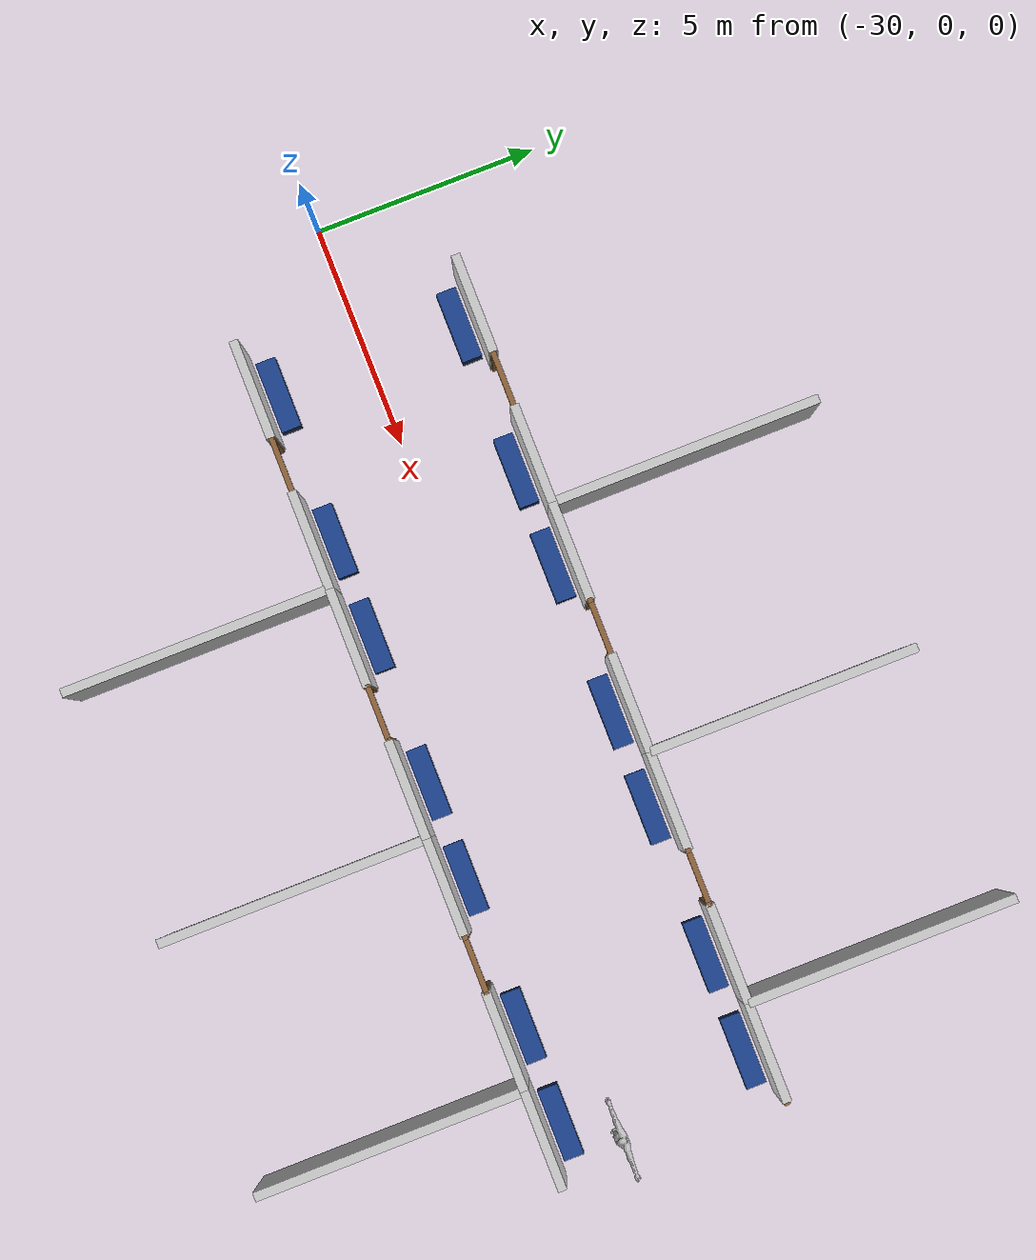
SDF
<sdf version="1.9">
 <world name="hospital_medium">
  <model name="north_partition_0">
   <static>true</static>
   <pose>-22.400 5.500 1.250 0 0 0</pose>
   <link name="link">
    <collision name="collision"><geometry><box><size>0.200 6.000 2.500</size></box></geometry></collision>
    <visual name="visual">
     <geometry><box><size>0.200 6.000 2.500</size></box></geometry>
     <material><ambient>0.78 0.78 0.78 1.0</ambient><diffuse>0.78 0.78 0.78 1.0</diffuse></material>
    </visual>
   </link>
  </model>
  <model name="north_partition_1">
   <static>true</static>
   <pose>-16.800 5.500 1.250 0 0 0</pose>
   <link name="link">
    <collision name="collision"><geometry><box><size>0.200 6.000 2.500</size></box></geometry></collision>
    <visual name="visual">
     <geometry><box><size>0.200 6.000 2.500</size></box></geometry>
     <material><ambient>0.78 0.78 0.78 1.0</ambient><diffuse>0.78 0.78 0.78 1.0</diffuse></material>
    </visual>
   </link>
  </model>
  <model name="north_partition_2">
   <static>true</static>
   <pose>-11.200 5.500 1.250 0 0 0</pose>
   <link name="link">
    <collision name="collision"><geometry><box><size>0.200 6.000 2.500</size></box></geometry></collision>
    <visual name="visual">
     <geometry><box><size>0.200 6.000 2.500</size></box></geometry>
     <material><ambient>0.78 0.78 0.78 1.0</ambient><diffuse>0.78 0.78 0.78 1.0</diffuse></material>
    </visual>
   </link>
  </model>
  <model name="south_partition_0">
   <static>true</static>
   <pose>-22.400 -5.500 1.250 0 0 0</pose>
   <link name="link">
    <collision name="collision"><geometry><box><size>0.200 6.000 2.500</size></box></geometry></collision>
    <visual name="visual">
     <geometry><box><size>0.200 6.000 2.500</size></box></geometry>
     <material><ambient>0.78 0.78 0.78 1.0</ambient><diffuse>0.78 0.78 0.78 1.0</diffuse></material>
    </visual>
   </link>
  </model>
  <model name="south_partition_1">
   <static>true</static>
   <pose>-16.800 -5.500 1.250 0 0 0</pose>
   <link name="link">
    <collision name="collision"><geometry><box><size>0.200 6.000 2.500</size></box></geometry></collision>
    <visual name="visual">
     <geometry><box><size>0.200 6.000 2.500</size></box></geometry>
     <material><ambient>0.78 0.78 0.78 1.0</ambient><diffuse>0.78 0.78 0.78 1.0</diffuse></material>
    </visual>
   </link>
  </model>
  <model name="south_partition_2">
   <static>true</static>
   <pose>-11.200 -5.500 1.250 0 0 0</pose>
   <link name="link">
    <collision name="collision"><geometry><box><size>0.200 6.000 2.500</size></box></geometry></collision>
    <visual name="visual">
     <geometry><box><size>0.200 6.000 2.500</size></box></geometry>
     <material><ambient>0.78 0.78 0.78 1.0</ambient><diffuse>0.78 0.78 0.78 1.0</diffuse></material>
    </visual>
   </link>
  </model>
  <model name="north_room_01_wall_left">
   <static>true</static>
   <pose>-26.900 2.500 1.250 0 0 0</pose>
   <link name="link">
    <collision name="collision"><geometry><box><size>2.200 0.200 2.500</size></box></geometry></collision>
    <visual name="visual">
     <geometry><box><size>2.200 0.200 2.500</size></box></geometry>
     <material><ambient>0.78 0.78 0.78 1.0</ambient><diffuse>0.78 0.78 0.78 1.0</diffuse></material>
    </visual>
   </link>
  </model>
  <model name="north_room_01_wall_right">
   <static>true</static>
   <pose>-23.500 2.500 1.250 0 0 0</pose>
   <link name="link">
    <collision name="collision"><geometry><box><size>2.200 0.200 2.500</size></box></geometry></collision>
    <visual name="visual">
     <geometry><box><size>2.200 0.200 2.500</size></box></geometry>
     <material><ambient>0.78 0.78 0.78 1.0</ambient><diffuse>0.78 0.78 0.78 1.0</diffuse></material>
    </visual>
   </link>
  </model>
  <model name="north_room_02_wall_left">
   <static>true</static>
   <pose>-21.300 2.500 1.250 0 0 0</pose>
   <link name="link">
    <collision name="collision"><geometry><box><size>2.200 0.200 2.500</size></box></geometry></collision>
    <visual name="visual">
     <geometry><box><size>2.200 0.200 2.500</size></box></geometry>
     <material><ambient>0.78 0.78 0.78 1.0</ambient><diffuse>0.78 0.78 0.78 1.0</diffuse></material>
    </visual>
   </link>
  </model>
  <model name="north_room_02_wall_right">
   <static>true</static>
   <pose>-17.900 2.500 1.250 0 0 0</pose>
   <link name="link">
    <collision name="collision"><geometry><box><size>2.200 0.200 2.500</size></box></geometry></collision>
    <visual name="visual">
     <geometry><box><size>2.200 0.200 2.500</size></box></geometry>
     <material><ambient>0.78 0.78 0.78 1.0</ambient><diffuse>0.78 0.78 0.78 1.0</diffuse></material>
    </visual>
   </link>
  </model>
  <model name="north_room_03_wall_left">
   <static>true</static>
   <pose>-15.700 2.500 1.250 0 0 0</pose>
   <link name="link">
    <collision name="collision"><geometry><box><size>2.200 0.200 2.500</size></box></geometry></collision>
    <visual name="visual">
     <geometry><box><size>2.200 0.200 2.500</size></box></geometry>
     <material><ambient>0.78 0.78 0.78 1.0</ambient><diffuse>0.78 0.78 0.78 1.0</diffuse></material>
    </visual>
   </link>
  </model>
  <model name="north_room_03_wall_right">
   <static>true</static>
   <pose>-12.300 2.500 1.250 0 0 0</pose>
   <link name="link">
    <collision name="collision"><geometry><box><size>2.200 0.200 2.500</size></box></geometry></collision>
    <visual name="visual">
     <geometry><box><size>2.200 0.200 2.500</size></box></geometry>
     <material><ambient>0.78 0.78 0.78 1.0</ambient><diffuse>0.78 0.78 0.78 1.0</diffuse></material>
    </visual>
   </link>
  </model>
  <model name="north_room_04_wall_left">
   <static>true</static>
   <pose>-10.100 2.500 1.250 0 0 0</pose>
   <link name="link">
    <collision name="collision"><geometry><box><size>2.200 0.200 2.500</size></box></geometry></collision>
    <visual name="visual">
     <geometry><box><size>2.200 0.200 2.500</size></box></geometry>
     <material><ambient>0.78 0.78 0.78 1.0</ambient><diffuse>0.78 0.78 0.78 1.0</diffuse></material>
    </visual>
   </link>
  </model>
  <model name="south_room_01_wall_left">
   <static>true</static>
   <pose>-26.900 -2.500 1.250 0 0 0</pose>
   <link name="link">
    <collision name="collision"><geometry><box><size>2.200 0.200 2.500</size></box></geometry></collision>
    <visual name="visual">
     <geometry><box><size>2.200 0.200 2.500</size></box></geometry>
     <material><ambient>0.78 0.78 0.78 1.0</ambient><diffuse>0.78 0.78 0.78 1.0</diffuse></material>
    </visual>
   </link>
  </model>
  <model name="south_room_01_wall_right">
   <static>true</static>
   <pose>-23.500 -2.500 1.250 0 0 0</pose>
   <link name="link">
    <collision name="collision"><geometry><box><size>2.200 0.200 2.500</size></box></geometry></collision>
    <visual name="visual">
     <geometry><box><size>2.200 0.200 2.500</size></box></geometry>
     <material><ambient>0.78 0.78 0.78 1.0</ambient><diffuse>0.78 0.78 0.78 1.0</diffuse></material>
    </visual>
   </link>
  </model>
  <model name="south_room_02_wall_left">
   <static>true</static>
   <pose>-21.300 -2.500 1.250 0 0 0</pose>
   <link name="link">
    <collision name="collision"><geometry><box><size>2.200 0.200 2.500</size></box></geometry></collision>
    <visual name="visual">
     <geometry><box><size>2.200 0.200 2.500</size></box></geometry>
     <material><ambient>0.78 0.78 0.78 1.0</ambient><diffuse>0.78 0.78 0.78 1.0</diffuse></material>
    </visual>
   </link>
  </model>
  <model name="south_room_02_wall_right">
   <static>true</static>
   <pose>-17.900 -2.500 1.250 0 0 0</pose>
   <link name="link">
    <collision name="collision"><geometry><box><size>2.200 0.200 2.500</size></box></geometry></collision>
    <visual name="visual">
     <geometry><box><size>2.200 0.200 2.500</size></box></geometry>
     <material><ambient>0.78 0.78 0.78 1.0</ambient><diffuse>0.78 0.78 0.78 1.0</diffuse></material>
    </visual>
   </link>
  </model>
  <model name="south_room_03_wall_left">
   <static>true</static>
   <pose>-15.700 -2.500 1.250 0 0 0</pose>
   <link name="link">
    <collision name="collision"><geometry><box><size>2.200 0.200 2.500</size></box></geometry></collision>
    <visual name="visual">
     <geometry><box><size>2.200 0.200 2.500</size></box></geometry>
     <material><ambient>0.78 0.78 0.78 1.0</ambient><diffuse>0.78 0.78 0.78 1.0</diffuse></material>
    </visual>
   </link>
  </model>
  <model name="south_room_03_wall_right">
   <static>true</static>
   <pose>-12.300 -2.500 1.250 0 0 0</pose>
   <link name="link">
    <collision name="collision"><geometry><box><size>2.200 0.200 2.500</size></box></geometry></collision>
    <visual name="visual">
     <geometry><box><size>2.200 0.200 2.500</size></box></geometry>
     <material><ambient>0.78 0.78 0.78 1.0</ambient><diffuse>0.78 0.78 0.78 1.0</diffuse></material>
    </visual>
   </link>
  </model>
  <model name="south_room_04_wall_left">
   <static>true</static>
   <pose>-10.100 -2.500 1.250 0 0 0</pose>
   <link name="link">
    <collision name="collision"><geometry><box><size>2.200 0.200 2.500</size></box></geometry></collision>
    <visual name="visual">
     <geometry><box><size>2.200 0.200 2.500</size></box></geometry>
     <material><ambient>0.78 0.78 0.78 1.0</ambient><diffuse>0.78 0.78 0.78 1.0</diffuse></material>
    </visual>
   </link>
  </model>
  <model name="north_door_01_left">
   <static>true</static>
   <pose>-25.800 2.490 1.250 0 0 0</pose>
   <link name="link">
    <collision name="collision"><geometry><box><size>0.100 0.120 2.500</size></box></geometry></collision>
    <visual name="visual">
     <geometry><box><size>0.100 0.120 2.500</size></box></geometry>
     <material><ambient>0.55 0.38 0.22 1.0</ambient><diffuse>0.55 0.38 0.22 1.0</diffuse></material>
    </visual>
   </link>
  </model>
  <model name="north_door_01_right">
   <static>true</static>
   <pose>-24.600 2.490 1.250 0 0 0</pose>
   <link name="link">
    <collision name="collision"><geometry><box><size>0.100 0.120 2.500</size></box></geometry></collision>
    <visual name="visual">
     <geometry><box><size>0.100 0.120 2.500</size></box></geometry>
     <material><ambient>0.55 0.38 0.22 1.0</ambient><diffuse>0.55 0.38 0.22 1.0</diffuse></material>
    </visual>
   </link>
  </model>
  <model name="north_door_01_top">
   <static>true</static>
   <pose>-25.200 2.490 2.450 0 0 0</pose>
   <link name="link">
    <collision name="collision"><geometry><box><size>1.200 0.120 0.100</size></box></geometry></collision>
    <visual name="visual">
     <geometry><box><size>1.200 0.120 0.100</size></box></geometry>
     <material><ambient>0.55 0.38 0.22 1.0</ambient><diffuse>0.55 0.38 0.22 1.0</diffuse></material>
    </visual>
   </link>
  </model>
  <model name="north_door_02_left">
   <static>true</static>
   <pose>-20.200 2.490 1.250 0 0 0</pose>
   <link name="link">
    <collision name="collision"><geometry><box><size>0.100 0.120 2.500</size></box></geometry></collision>
    <visual name="visual">
     <geometry><box><size>0.100 0.120 2.500</size></box></geometry>
     <material><ambient>0.55 0.38 0.22 1.0</ambient><diffuse>0.55 0.38 0.22 1.0</diffuse></material>
    </visual>
   </link>
  </model>
  <model name="north_door_02_right">
   <static>true</static>
   <pose>-19.000 2.490 1.250 0 0 0</pose>
   <link name="link">
    <collision name="collision"><geometry><box><size>0.100 0.120 2.500</size></box></geometry></collision>
    <visual name="visual">
     <geometry><box><size>0.100 0.120 2.500</size></box></geometry>
     <material><ambient>0.55 0.38 0.22 1.0</ambient><diffuse>0.55 0.38 0.22 1.0</diffuse></material>
    </visual>
   </link>
  </model>
  <model name="north_door_02_top">
   <static>true</static>
   <pose>-19.600 2.490 2.450 0 0 0</pose>
   <link name="link">
    <collision name="collision"><geometry><box><size>1.200 0.120 0.100</size></box></geometry></collision>
    <visual name="visual">
     <geometry><box><size>1.200 0.120 0.100</size></box></geometry>
     <material><ambient>0.55 0.38 0.22 1.0</ambient><diffuse>0.55 0.38 0.22 1.0</diffuse></material>
    </visual>
   </link>
  </model>
  <model name="north_door_03_left">
   <static>true</static>
   <pose>-14.600 2.490 1.250 0 0 0</pose>
   <link name="link">
    <collision name="collision"><geometry><box><size>0.100 0.120 2.500</size></box></geometry></collision>
    <visual name="visual">
     <geometry><box><size>0.100 0.120 2.500</size></box></geometry>
     <material><ambient>0.55 0.38 0.22 1.0</ambient><diffuse>0.55 0.38 0.22 1.0</diffuse></material>
    </visual>
   </link>
  </model>
  <model name="north_door_03_right">
   <static>true</static>
   <pose>-13.400 2.490 1.250 0 0 0</pose>
   <link name="link">
    <collision name="collision"><geometry><box><size>0.100 0.120 2.500</size></box></geometry></collision>
    <visual name="visual">
     <geometry><box><size>0.100 0.120 2.500</size></box></geometry>
     <material><ambient>0.55 0.38 0.22 1.0</ambient><diffuse>0.55 0.38 0.22 1.0</diffuse></material>
    </visual>
   </link>
  </model>
  <model name="north_door_03_top">
   <static>true</static>
   <pose>-14.000 2.490 2.450 0 0 0</pose>
   <link name="link">
    <collision name="collision"><geometry><box><size>1.200 0.120 0.100</size></box></geometry></collision>
    <visual name="visual">
     <geometry><box><size>1.200 0.120 0.100</size></box></geometry>
     <material><ambient>0.55 0.38 0.22 1.0</ambient><diffuse>0.55 0.38 0.22 1.0</diffuse></material>
    </visual>
   </link>
  </model>
  <model name="north_door_04_left">
   <static>true</static>
   <pose>-9.000 2.490 1.250 0 0 0</pose>
   <link name="link">
    <collision name="collision"><geometry><box><size>0.100 0.120 2.500</size></box></geometry></collision>
    <visual name="visual">
     <geometry><box><size>0.100 0.120 2.500</size></box></geometry>
     <material><ambient>0.55 0.38 0.22 1.0</ambient><diffuse>0.55 0.38 0.22 1.0</diffuse></material>
    </visual>
   </link>
  </model>
  <model name="south_door_01_left">
   <static>true</static>
   <pose>-25.800 -2.490 1.250 0 0 0</pose>
   <link name="link">
    <collision name="collision"><geometry><box><size>0.100 0.120 2.500</size></box></geometry></collision>
    <visual name="visual">
     <geometry><box><size>0.100 0.120 2.500</size></box></geometry>
     <material><ambient>0.55 0.38 0.22 1.0</ambient><diffuse>0.55 0.38 0.22 1.0</diffuse></material>
    </visual>
   </link>
  </model>
  <model name="south_door_01_right">
   <static>true</static>
   <pose>-24.600 -2.490 1.250 0 0 0</pose>
   <link name="link">
    <collision name="collision"><geometry><box><size>0.100 0.120 2.500</size></box></geometry></collision>
    <visual name="visual">
     <geometry><box><size>0.100 0.120 2.500</size></box></geometry>
     <material><ambient>0.55 0.38 0.22 1.0</ambient><diffuse>0.55 0.38 0.22 1.0</diffuse></material>
    </visual>
   </link>
  </model>
  <model name="south_door_01_top">
   <static>true</static>
   <pose>-25.200 -2.490 2.450 0 0 0</pose>
   <link name="link">
    <collision name="collision"><geometry><box><size>1.200 0.120 0.100</size></box></geometry></collision>
    <visual name="visual">
     <geometry><box><size>1.200 0.120 0.100</size></box></geometry>
     <material><ambient>0.55 0.38 0.22 1.0</ambient><diffuse>0.55 0.38 0.22 1.0</diffuse></material>
    </visual>
   </link>
  </model>
  <model name="south_door_02_left">
   <static>true</static>
   <pose>-20.200 -2.490 1.250 0 0 0</pose>
   <link name="link">
    <collision name="collision"><geometry><box><size>0.100 0.120 2.500</size></box></geometry></collision>
    <visual name="visual">
     <geometry><box><size>0.100 0.120 2.500</size></box></geometry>
     <material><ambient>0.55 0.38 0.22 1.0</ambient><diffuse>0.55 0.38 0.22 1.0</diffuse></material>
    </visual>
   </link>
  </model>
  <model name="south_door_02_right">
   <static>true</static>
   <pose>-19.000 -2.490 1.250 0 0 0</pose>
   <link name="link">
    <collision name="collision"><geometry><box><size>0.100 0.120 2.500</size></box></geometry></collision>
    <visual name="visual">
     <geometry><box><size>0.100 0.120 2.500</size></box></geometry>
     <material><ambient>0.55 0.38 0.22 1.0</ambient><diffuse>0.55 0.38 0.22 1.0</diffuse></material>
    </visual>
   </link>
  </model>
  <model name="south_door_02_top">
   <static>true</static>
   <pose>-19.600 -2.490 2.450 0 0 0</pose>
   <link name="link">
    <collision name="collision"><geometry><box><size>1.200 0.120 0.100</size></box></geometry></collision>
    <visual name="visual">
     <geometry><box><size>1.200 0.120 0.100</size></box></geometry>
     <material><ambient>0.55 0.38 0.22 1.0</ambient><diffuse>0.55 0.38 0.22 1.0</diffuse></material>
    </visual>
   </link>
  </model>
  <model name="south_door_03_left">
   <static>true</static>
   <pose>-14.600 -2.490 1.250 0 0 0</pose>
   <link name="link">
    <collision name="collision"><geometry><box><size>0.100 0.120 2.500</size></box></geometry></collision>
    <visual name="visual">
     <geometry><box><size>0.100 0.120 2.500</size></box></geometry>
     <material><ambient>0.55 0.38 0.22 1.0</ambient><diffuse>0.55 0.38 0.22 1.0</diffuse></material>
    </visual>
   </link>
  </model>
  <model name="south_door_03_right">
   <static>true</static>
   <pose>-13.400 -2.490 1.250 0 0 0</pose>
   <link name="link">
    <collision name="collision"><geometry><box><size>0.100 0.120 2.500</size></box></geometry></collision>
    <visual name="visual">
     <geometry><box><size>0.100 0.120 2.500</size></box></geometry>
     <material><ambient>0.55 0.38 0.22 1.0</ambient><diffuse>0.55 0.38 0.22 1.0</diffuse></material>
    </visual>
   </link>
  </model>
  <model name="south_door_03_top">
   <static>true</static>
   <pose>-14.000 -2.490 2.450 0 0 0</pose>
   <link name="link">
    <collision name="collision"><geometry><box><size>1.200 0.120 0.100</size></box></geometry></collision>
    <visual name="visual">
     <geometry><box><size>1.200 0.120 0.100</size></box></geometry>
     <material><ambient>0.55 0.38 0.22 1.0</ambient><diffuse>0.55 0.38 0.22 1.0</diffuse></material>
    </visual>
   </link>
  </model>
  <model name="north_room_01_bench_left_seat">
   <static>true</static>
   <pose>-26.900 2.100 0.450 0 0 0</pose>
   <link name="link">
    <collision name="collision"><geometry><box><size>1.600 0.450 0.180</size></box></geometry></collision>
    <visual name="visual">
     <geometry><box><size>1.600 0.450 0.180</size></box></geometry>
     <material><ambient>0.10 0.25 0.55 1.0</ambient><diffuse>0.10 0.25 0.55 1.0</diffuse></material>
    </visual>
   </link>
  </model>
  <model name="north_room_01_bench_left_base">
   <static>true</static>
   <pose>-26.900 2.100 0.180 0 0 0</pose>
   <link name="link">
    <collision name="collision"><geometry><box><size>1.600 0.450 0.360</size></box></geometry></collision>
    <visual name="visual">
     <geometry><box><size>1.600 0.450 0.360</size></box></geometry>
     <material><ambient>0.18 0.23 0.33 1.0</ambient><diffuse>0.18 0.23 0.33 1.0</diffuse></material>
    </visual>
   </link>
  </model>
  <model name="north_room_01_bench_right_seat">
   <static>true</static>
   <pose>-23.500 2.100 0.450 0 0 0</pose>
   <link name="link">
    <collision name="collision"><geometry><box><size>1.600 0.450 0.180</size></box></geometry></collision>
    <visual name="visual">
     <geometry><box><size>1.600 0.450 0.180</size></box></geometry>
     <material><ambient>0.10 0.25 0.55 1.0</ambient><diffuse>0.10 0.25 0.55 1.0</diffuse></material>
    </visual>
   </link>
  </model>
  <model name="north_room_01_bench_right_base">
   <static>true</static>
   <pose>-23.500 2.100 0.180 0 0 0</pose>
   <link name="link">
    <collision name="collision"><geometry><box><size>1.600 0.450 0.360</size></box></geometry></collision>
    <visual name="visual">
     <geometry><box><size>1.600 0.450 0.360</size></box></geometry>
     <material><ambient>0.18 0.23 0.33 1.0</ambient><diffuse>0.18 0.23 0.33 1.0</diffuse></material>
    </visual>
   </link>
  </model>
  <model name="north_room_02_bench_left_seat">
   <static>true</static>
   <pose>-21.300 2.100 0.450 0 0 0</pose>
   <link name="link">
    <collision name="collision"><geometry><box><size>1.600 0.450 0.180</size></box></geometry></collision>
    <visual name="visual">
     <geometry><box><size>1.600 0.450 0.180</size></box></geometry>
     <material><ambient>0.10 0.25 0.55 1.0</ambient><diffuse>0.10 0.25 0.55 1.0</diffuse></material>
    </visual>
   </link>
  </model>
  <model name="north_room_02_bench_left_base">
   <static>true</static>
   <pose>-21.300 2.100 0.180 0 0 0</pose>
   <link name="link">
    <collision name="collision"><geometry><box><size>1.600 0.450 0.360</size></box></geometry></collision>
    <visual name="visual">
     <geometry><box><size>1.600 0.450 0.360</size></box></geometry>
     <material><ambient>0.18 0.23 0.33 1.0</ambient><diffuse>0.18 0.23 0.33 1.0</diffuse></material>
    </visual>
   </link>
  </model>
  <model name="north_room_02_bench_right_seat">
   <static>true</static>
   <pose>-17.900 2.100 0.450 0 0 0</pose>
   <link name="link">
    <collision name="collision"><geometry><box><size>1.600 0.450 0.180</size></box></geometry></collision>
    <visual name="visual">
     <geometry><box><size>1.600 0.450 0.180</size></box></geometry>
     <material><ambient>0.10 0.25 0.55 1.0</ambient><diffuse>0.10 0.25 0.55 1.0</diffuse></material>
    </visual>
   </link>
  </model>
  <model name="north_room_02_bench_right_base">
   <static>true</static>
   <pose>-17.900 2.100 0.180 0 0 0</pose>
   <link name="link">
    <collision name="collision"><geometry><box><size>1.600 0.450 0.360</size></box></geometry></collision>
    <visual name="visual">
     <geometry><box><size>1.600 0.450 0.360</size></box></geometry>
     <material><ambient>0.18 0.23 0.33 1.0</ambient><diffuse>0.18 0.23 0.33 1.0</diffuse></material>
    </visual>
   </link>
  </model>
  <model name="north_room_03_bench_left_seat">
   <static>true</static>
   <pose>-15.700 2.100 0.450 0 0 0</pose>
   <link name="link">
    <collision name="collision"><geometry><box><size>1.600 0.450 0.180</size></box></geometry></collision>
    <visual name="visual">
     <geometry><box><size>1.600 0.450 0.180</size></box></geometry>
     <material><ambient>0.10 0.25 0.55 1.0</ambient><diffuse>0.10 0.25 0.55 1.0</diffuse></material>
    </visual>
   </link>
  </model>
  <model name="north_room_03_bench_left_base">
   <static>true</static>
   <pose>-15.700 2.100 0.180 0 0 0</pose>
   <link name="link">
    <collision name="collision"><geometry><box><size>1.600 0.450 0.360</size></box></geometry></collision>
    <visual name="visual">
     <geometry><box><size>1.600 0.450 0.360</size></box></geometry>
     <material><ambient>0.18 0.23 0.33 1.0</ambient><diffuse>0.18 0.23 0.33 1.0</diffuse></material>
    </visual>
   </link>
  </model>
  <model name="north_room_03_bench_right_seat">
   <static>true</static>
   <pose>-12.300 2.100 0.450 0 0 0</pose>
   <link name="link">
    <collision name="collision"><geometry><box><size>1.600 0.450 0.180</size></box></geometry></collision>
    <visual name="visual">
     <geometry><box><size>1.600 0.450 0.180</size></box></geometry>
     <material><ambient>0.10 0.25 0.55 1.0</ambient><diffuse>0.10 0.25 0.55 1.0</diffuse></material>
    </visual>
   </link>
  </model>
  <model name="north_room_03_bench_right_base">
   <static>true</static>
   <pose>-12.300 2.100 0.180 0 0 0</pose>
   <link name="link">
    <collision name="collision"><geometry><box><size>1.600 0.450 0.360</size></box></geometry></collision>
    <visual name="visual">
     <geometry><box><size>1.600 0.450 0.360</size></box></geometry>
     <material><ambient>0.18 0.23 0.33 1.0</ambient><diffuse>0.18 0.23 0.33 1.0</diffuse></material>
    </visual>
   </link>
  </model>
  <model name="north_room_04_bench_left_seat">
   <static>true</static>
   <pose>-10.100 2.100 0.450 0 0 0</pose>
   <link name="link">
    <collision name="collision"><geometry><box><size>1.600 0.450 0.180</size></box></geometry></collision>
    <visual name="visual">
     <geometry><box><size>1.600 0.450 0.180</size></box></geometry>
     <material><ambient>0.10 0.25 0.55 1.0</ambient><diffuse>0.10 0.25 0.55 1.0</diffuse></material>
    </visual>
   </link>
  </model>
  <model name="north_room_04_bench_left_base">
   <static>true</static>
   <pose>-10.100 2.100 0.180 0 0 0</pose>
   <link name="link">
    <collision name="collision"><geometry><box><size>1.600 0.450 0.360</size></box></geometry></collision>
    <visual name="visual">
     <geometry><box><size>1.600 0.450 0.360</size></box></geometry>
     <material><ambient>0.18 0.23 0.33 1.0</ambient><diffuse>0.18 0.23 0.33 1.0</diffuse></material>
    </visual>
   </link>
  </model>
  <model name="south_room_01_bench_left_seat">
   <static>true</static>
   <pose>-26.900 -2.100 0.450 0 0 0</pose>
   <link name="link">
    <collision name="collision"><geometry><box><size>1.600 0.450 0.180</size></box></geometry></collision>
    <visual name="visual">
     <geometry><box><size>1.600 0.450 0.180</size></box></geometry>
     <material><ambient>0.10 0.25 0.55 1.0</ambient><diffuse>0.10 0.25 0.55 1.0</diffuse></material>
    </visual>
   </link>
  </model>
  <model name="south_room_01_bench_left_base">
   <static>true</static>
   <pose>-26.900 -2.100 0.180 0 0 0</pose>
   <link name="link">
    <collision name="collision"><geometry><box><size>1.600 0.450 0.360</size></box></geometry></collision>
    <visual name="visual">
     <geometry><box><size>1.600 0.450 0.360</size></box></geometry>
     <material><ambient>0.18 0.23 0.33 1.0</ambient><diffuse>0.18 0.23 0.33 1.0</diffuse></material>
    </visual>
   </link>
  </model>
  <model name="south_room_01_bench_right_seat">
   <static>true</static>
   <pose>-23.500 -2.100 0.450 0 0 0</pose>
   <link name="link">
    <collision name="collision"><geometry><box><size>1.600 0.450 0.180</size></box></geometry></collision>
    <visual name="visual">
     <geometry><box><size>1.600 0.450 0.180</size></box></geometry>
     <material><ambient>0.10 0.25 0.55 1.0</ambient><diffuse>0.10 0.25 0.55 1.0</diffuse></material>
    </visual>
   </link>
  </model>
  <model name="south_room_01_bench_right_base">
   <static>true</static>
   <pose>-23.500 -2.100 0.180 0 0 0</pose>
   <link name="link">
    <collision name="collision"><geometry><box><size>1.600 0.450 0.360</size></box></geometry></collision>
    <visual name="visual">
     <geometry><box><size>1.600 0.450 0.360</size></box></geometry>
     <material><ambient>0.18 0.23 0.33 1.0</ambient><diffuse>0.18 0.23 0.33 1.0</diffuse></material>
    </visual>
   </link>
  </model>
  <model name="south_room_02_bench_left_seat">
   <static>true</static>
   <pose>-21.300 -2.100 0.450 0 0 0</pose>
   <link name="link">
    <collision name="collision"><geometry><box><size>1.600 0.450 0.180</size></box></geometry></collision>
    <visual name="visual">
     <geometry><box><size>1.600 0.450 0.180</size></box></geometry>
     <material><ambient>0.10 0.25 0.55 1.0</ambient><diffuse>0.10 0.25 0.55 1.0</diffuse></material>
    </visual>
   </link>
  </model>
  <model name="south_room_02_bench_left_base">
   <static>true</static>
   <pose>-21.300 -2.100 0.180 0 0 0</pose>
   <link name="link">
    <collision name="collision"><geometry><box><size>1.600 0.450 0.360</size></box></geometry></collision>
    <visual name="visual">
     <geometry><box><size>1.600 0.450 0.360</size></box></geometry>
     <material><ambient>0.18 0.23 0.33 1.0</ambient><diffuse>0.18 0.23 0.33 1.0</diffuse></material>
    </visual>
   </link>
  </model>
  <model name="south_room_02_bench_right_seat">
   <static>true</static>
   <pose>-17.900 -2.100 0.450 0 0 0</pose>
   <link name="link">
    <collision name="collision"><geometry><box><size>1.600 0.450 0.180</size></box></geometry></collision>
    <visual name="visual">
     <geometry><box><size>1.600 0.450 0.180</size></box></geometry>
     <material><ambient>0.10 0.25 0.55 1.0</ambient><diffuse>0.10 0.25 0.55 1.0</diffuse></material>
    </visual>
   </link>
  </model>
  <model name="south_room_02_bench_right_base">
   <static>true</static>
   <pose>-17.900 -2.100 0.180 0 0 0</pose>
   <link name="link">
    <collision name="collision"><geometry><box><size>1.600 0.450 0.360</size></box></geometry></collision>
    <visual name="visual">
     <geometry><box><size>1.600 0.450 0.360</size></box></geometry>
     <material><ambient>0.18 0.23 0.33 1.0</ambient><diffuse>0.18 0.23 0.33 1.0</diffuse></material>
    </visual>
   </link>
  </model>
  <model name="south_room_03_bench_left_seat">
   <static>true</static>
   <pose>-15.700 -2.100 0.450 0 0 0</pose>
   <link name="link">
    <collision name="collision"><geometry><box><size>1.600 0.450 0.180</size></box></geometry></collision>
    <visual name="visual">
     <geometry><box><size>1.600 0.450 0.180</size></box></geometry>
     <material><ambient>0.10 0.25 0.55 1.0</ambient><diffuse>0.10 0.25 0.55 1.0</diffuse></material>
    </visual>
   </link>
  </model>
  <model name="south_room_03_bench_left_base">
   <static>true</static>
   <pose>-15.700 -2.100 0.180 0 0 0</pose>
   <link name="link">
    <collision name="collision"><geometry><box><size>1.600 0.450 0.360</size></box></geometry></collision>
    <visual name="visual">
     <geometry><box><size>1.600 0.450 0.360</size></box></geometry>
     <material><ambient>0.18 0.23 0.33 1.0</ambient><diffuse>0.18 0.23 0.33 1.0</diffuse></material>
    </visual>
   </link>
  </model>
  <model name="south_room_03_bench_right_seat">
   <static>true</static>
   <pose>-12.300 -2.100 0.450 0 0 0</pose>
   <link name="link">
    <collision name="collision"><geometry><box><size>1.600 0.450 0.180</size></box></geometry></collision>
    <visual name="visual">
     <geometry><box><size>1.600 0.450 0.180</size></box></geometry>
     <material><ambient>0.10 0.25 0.55 1.0</ambient><diffuse>0.10 0.25 0.55 1.0</diffuse></material>
    </visual>
   </link>
  </model>
  <model name="south_room_03_bench_right_base">
   <static>true</static>
   <pose>-12.300 -2.100 0.180 0 0 0</pose>
   <link name="link">
    <collision name="collision"><geometry><box><size>1.600 0.450 0.360</size></box></geometry></collision>
    <visual name="visual">
     <geometry><box><size>1.600 0.450 0.360</size></box></geometry>
     <material><ambient>0.18 0.23 0.33 1.0</ambient><diffuse>0.18 0.23 0.33 1.0</diffuse></material>
    </visual>
   </link>
  </model>
  <model name="south_room_04_bench_left_seat">
   <static>true</static>
   <pose>-10.100 -2.100 0.450 0 0 0</pose>
   <link name="link">
    <collision name="collision"><geometry><box><size>1.600 0.450 0.180</size></box></geometry></collision>
    <visual name="visual">
     <geometry><box><size>1.600 0.450 0.180</size></box></geometry>
     <material><ambient>0.10 0.25 0.55 1.0</ambient><diffuse>0.10 0.25 0.55 1.0</diffuse></material>
    </visual>
   </link>
  </model>
  <model name="south_room_04_bench_left_base">
   <static>true</static>
   <pose>-10.100 -2.100 0.180 0 0 0</pose>
   <link name="link">
    <collision name="collision"><geometry><box><size>1.600 0.450 0.360</size></box></geometry></collision>
    <visual name="visual">
     <geometry><box><size>1.600 0.450 0.360</size></box></geometry>
     <material><ambient>0.18 0.23 0.33 1.0</ambient><diffuse>0.18 0.23 0.33 1.0</diffuse></material>
    </visual>
   </link>
  </model>
  <model name="medium_walker_01_proxy">
   <pose>-10.000 0.000 0.850 0 0 3.14159</pose>
   <link name="link">
    <gravity>false</gravity>
    <kinematic>true</kinematic>
    <collision name="collision">
     <geometry><cylinder><radius>0.28</radius><length>1.70</length></cylinder></geometry>
    </collision>
    <visual name="proxy_visual">
     <geometry><cylinder><radius>0.28</radius><length>1.70</length></cylinder></geometry>
     <transparency>1.0</transparency>
    </visual>
   </link>
  </model>
  <model name="medium_standing_room_04_south">
   <static>true</static>
   <pose>-9.400 -1.000 1.0 0 0 0.00000</pose>
   <link name="body">
    <visual name="standing_person">
     <geometry><mesh><uri>model://human/meshes/stand.dae</uri></mesh></geometry>
    </visual>
    <collision name="body_collision">
     <pose>0 0 -0.15 0 0 0</pose>
     <geometry><cylinder><radius>0.28</radius><length>1.70</length></cylinder></geometry>
    </collision>
   </link>
  </model>
  <model name="medium_walker_06_trolley_pusher_proxy">
   <pose>-24.000 0.600 0.850 0 0 0.00000</pose>
   <link name="link">
    <gravity>false</gravity>
    <kinematic>true</kinematic>
    <collision name="collision">
     <geometry><cylinder><radius>0.28</radius><length>1.70</length></cylinder></geometry>
    </collision>
    <visual name="proxy_visual">
     <geometry><cylinder><radius>0.28</radius><length>1.70</length></cylinder></geometry>
     <transparency>1.0</transparency>
    </visual>
   </link>
  </model>
  <model name="medium_trolley_06_proxy">
   <pose>-23.300 0.600 0.850 0 0 0.00000</pose>
   <link name="link">
    <gravity>false</gravity>
    <kinematic>true</kinematic>
    <collision name="collision">
     <geometry><cylinder><radius>0.35</radius><length>1.70</length></cylinder></geometry>
    </collision>
    <visual name="proxy_visual">
     <geometry><cylinder><radius>0.35</radius><length>1.70</length></cylinder></geometry>
     <transparency>1.0</transparency>
    </visual>
   </link>
  </model>
 </world>
</sdf>
